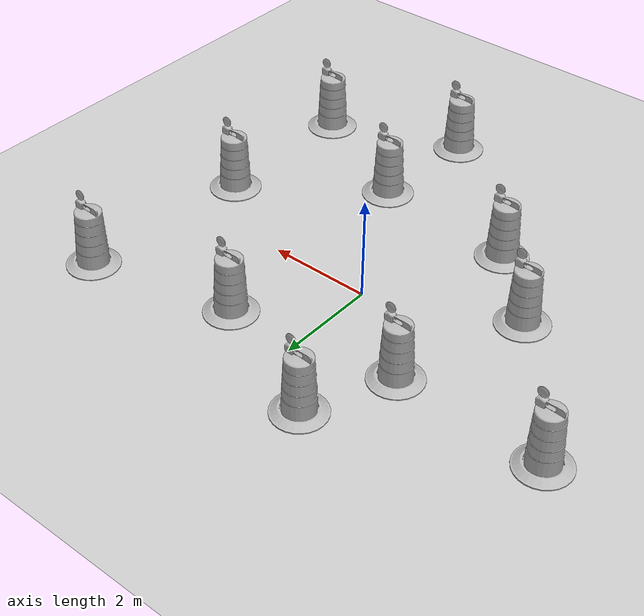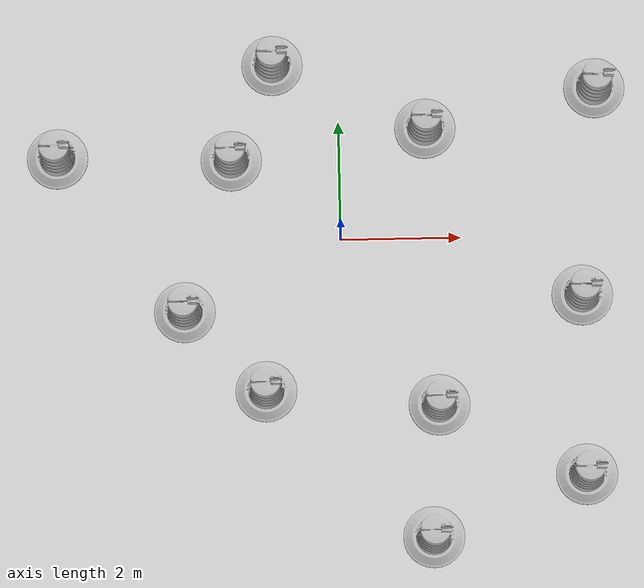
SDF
<sdf version="1.7">
 <world name="default">
  <light name="sun" type="directional">
   <pose>0 0 10 0 -0 0</pose>
   <diffuse>0.8 0.8 0.8 1</diffuse>
   <specular>0.2 0.2 0.2 1</specular>
   <attenuation>
    <range>1000</range>
    <constant>0.9</constant>
    <linear>0.01</linear>
    <quadratic>0.001</quadratic>
   </attenuation>
   <direction>-0.5 0.1 -0.9</direction>
   <spot><inner_angle>0</inner_angle><outer_angle>0</outer_angle><falloff>0</falloff></spot>
  </light>
  <model name="ground_plane">
   <static>1</static>
   <link name="link">
    <collision name="collision">
     <geometry><plane><normal>0 0 1</normal><size>100 100</size></plane></geometry>
     <surface>
      <contact><collide_bitmask>65535</collide_bitmask></contact>
      <friction><ode><mu>100</mu><mu2>50</mu2></ode></friction>
     </surface>
    </collision>
    <visual name="visual">
     <cast_shadows>0</cast_shadows>
     <geometry><plane><normal>0 0 1</normal><size>100 100</size></plane></geometry>
     <material>
      <script><uri>file://media/materials/scripts/gazebo.material</uri><name>Gazebo/Grey</name></script>
     </material>
    </visual>
   </link>
  </model>
  <gravity>0 0 -9.8</gravity>
  <magnetic_field>6e-06 2.3e-05 -4.2e-05</magnetic_field>
  <atmosphere type="adiabatic"/>
  <physics type="ode">
   <max_step_size>0.001</max_step_size>
   <real_time_factor>1</real_time_factor>
   <real_time_update_rate>1000</real_time_update_rate>
  </physics>
  <scene><ambient>0.4 0.4 0.4 1</ambient><background>0.7 0.7 0.7 1</background><shadows>1</shadows></scene>
  <audio><device>default</device></audio>
  <spherical_coordinates>
   <surface_model>EARTH_WGS84</surface_model>
   <latitude_deg>0</latitude_deg>
   <longitude_deg>0</longitude_deg>
   <elevation>0</elevation>
   <heading_deg>0</heading_deg>
  </spherical_coordinates>
  <model name="Construction Barrel">
   <link name="link">
    <inertial>
     <pose>0 0 0.4 0 -0 0</pose>
     <mass>500</mass>
     <inertia><ixx>51.2096</ixx><iyy>51.2096</iyy><izz>25</izz><ixy>0</ixy><ixz>0</ixz><iyz>0</iyz></inertia>
    </inertial>
    <collision name="collision">
     <geometry><mesh><uri>model://construction_barrel/meshes/construction_barrel.dae</uri></mesh></geometry>
    </collision>
    <visual name="visual">
     <geometry><mesh><uri>model://construction_barrel/meshes/construction_barrel.dae</uri></mesh></geometry>
    </visual>
   </link>
   <pose>-2.60721 -1.17981 0 0 0 -2.3e-05</pose>
  </model>
  <model name="Construction Barrel_clone">
   <link name="link">
    <inertial>
     <pose>0 0 0.4 0 -0 0</pose>
     <mass>500</mass>
     <inertia><ixx>51.2096</ixx><iyy>51.2096</iyy><izz>25</izz><ixy>0</ixy><ixz>0</ixz><iyz>0</iyz></inertia>
    </inertial>
    <collision name="collision">
     <geometry><mesh><uri>model://construction_barrel/meshes/construction_barrel.dae</uri></mesh></geometry>
    </collision>
    <visual name="visual">
     <geometry><mesh><uri>model://construction_barrel/meshes/construction_barrel.dae</uri></mesh></geometry>
    </visual>
   </link>
   <pose>-1.80015 1.36644 -1e-06 4e-06 -2e-06 -2.4e-05</pose>
  </model>
  <model name="Construction Barrel_clone_0">
   <link name="link">
    <inertial>
     <pose>0 0 0.4 0 -0 0</pose>
     <mass>500</mass>
     <inertia><ixx>51.2096</ixx><iyy>51.2096</iyy><izz>25</izz><ixy>0</ixy><ixz>0</ixz><iyz>0</iyz></inertia>
    </inertial>
    <collision name="collision">
     <geometry><mesh><uri>model://construction_barrel/meshes/construction_barrel.dae</uri></mesh></geometry>
    </collision>
    <visual name="visual">
     <geometry><mesh><uri>model://construction_barrel/meshes/construction_barrel.dae</uri></mesh></geometry>
    </visual>
   </link>
   <pose>1.44436 1.86368 0 0 0 -2.3e-05</pose>
  </model>
  <model name="Construction Barrel_clone_1">
   <link name="link">
    <inertial>
     <pose>0 0 0.4 0 -0 0</pose>
     <mass>500</mass>
     <inertia><ixx>51.2096</ixx><iyy>51.2096</iyy><izz>25</izz><ixy>0</ixy><ixz>0</ixz><iyz>0</iyz></inertia>
    </inertial>
    <collision name="collision">
     <geometry><mesh><uri>model://construction_barrel/meshes/construction_barrel.dae</uri></mesh></geometry>
    </collision>
    <visual name="visual">
     <geometry><mesh><uri>model://construction_barrel/meshes/construction_barrel.dae</uri></mesh></geometry>
    </visual>
   </link>
   <pose>1.58852 -2.80141 -1e-06 5e-06 -2e-06 -2.3e-05</pose>
  </model>
  <model name="Construction Barrel_clone_2">
   <link name="link">
    <inertial>
     <pose>0 0 0.4 0 -0 0</pose>
     <mass>500</mass>
     <inertia><ixx>51.2096</ixx><iyy>51.2096</iyy><izz>25</izz><ixy>0</ixy><ixz>0</ixz><iyz>0</iyz></inertia>
    </inertial>
    <collision name="collision">
     <geometry><mesh><uri>model://construction_barrel/meshes/construction_barrel.dae</uri></mesh></geometry>
    </collision>
    <visual name="visual">
     <geometry><mesh><uri>model://construction_barrel/meshes/construction_barrel.dae</uri></mesh></geometry>
    </visual>
   </link>
   <pose>-1.27291 -2.53103 -3e-06 -4e-06 -4e-06 -1.8e-05</pose>
  </model>
  <model name="Construction Barrel_clone_3">
   <link name="link">
    <inertial>
     <pose>0 0 0.4 0 -0 0</pose>
     <mass>500</mass>
     <inertia><ixx>51.2096</ixx><iyy>51.2096</iyy><izz>25</izz><ixy>0</ixy><ixz>0</ixz><iyz>0</iyz></inertia>
    </inertial>
    <collision name="collision">
     <geometry><mesh><uri>model://construction_barrel/meshes/construction_barrel.dae</uri></mesh></geometry>
    </collision>
    <visual name="visual">
     <geometry><mesh><uri>model://construction_barrel/meshes/construction_barrel.dae</uri></mesh></geometry>
    </visual>
   </link>
   <pose>3.99995 -1.00002 -2e-06 -7e-06 4e-06 -2.1e-05</pose>
  </model>
  <model name="Construction Barrel_clone_4">
   <link name="link">
    <inertial>
     <pose>0 0 0.4 0 -0 0</pose>
     <mass>500</mass>
     <inertia><ixx>51.2096</ixx><iyy>51.2096</iyy><izz>25</izz><ixy>0</ixy><ixz>0</ixz><iyz>0</iyz></inertia>
    </inertial>
    <collision name="collision">
     <geometry><mesh><uri>model://construction_barrel/meshes/construction_barrel.dae</uri></mesh></geometry>
    </collision>
    <visual name="visual">
     <geometry><mesh><uri>model://construction_barrel/meshes/construction_barrel.dae</uri></mesh></geometry>
    </visual>
   </link>
   <pose>-1.09445 2.98135 -1e-06 7e-06 8e-06 -2.1e-05</pose>
  </model>
  <model name="Construction Barrel_clone_5">
   <link name="link">
    <inertial>
     <pose>0 0 0.4 0 -0 0</pose>
     <mass>500</mass>
     <inertia><ixx>51.2096</ixx><iyy>51.2096</iyy><izz>25</izz><ixy>0</ixy><ixz>0</ixz><iyz>0</iyz></inertia>
    </inertial>
    <collision name="collision">
     <geometry><mesh><uri>model://construction_barrel/meshes/construction_barrel.dae</uri></mesh></geometry>
    </collision>
    <visual name="visual">
     <geometry><mesh><uri>model://construction_barrel/meshes/construction_barrel.dae</uri></mesh></geometry>
    </visual>
   </link>
   <pose>-4.69933 1.44999 -0 0 0 -1.8e-05</pose>
  </model>
  <model name="Construction Barrel_clone_6">
   <link name="link">
    <inertial>
     <pose>0 0 0.4 0 -0 0</pose>
     <mass>500</mass>
     <inertia><ixx>51.2096</ixx><iyy>51.2096</iyy><izz>25</izz><ixy>0</ixy><ixz>0</ixz><iyz>0</iyz></inertia>
    </inertial>
    <collision name="collision">
     <geometry><mesh><uri>model://construction_barrel/meshes/construction_barrel.dae</uri></mesh></geometry>
    </collision>
    <visual name="visual">
     <geometry><mesh><uri>model://construction_barrel/meshes/construction_barrel.dae</uri></mesh></geometry>
    </visual>
   </link>
   <pose>1.45483 -5.00001 -5e-06 -7e-06 -1e-05 -2.1e-05</pose>
  </model>
  <model name="Construction Barrel_clone_7">
   <link name="link">
    <inertial>
     <pose>0 0 0.4 0 -0 0</pose>
     <mass>500</mass>
     <inertia><ixx>51.2096</ixx><iyy>51.2096</iyy><izz>25</izz><ixy>0</ixy><ixz>0</ixz><iyz>0</iyz></inertia>
    </inertial>
    <collision name="collision">
     <geometry><mesh><uri>model://construction_barrel/meshes/construction_barrel.dae</uri></mesh></geometry>
    </collision>
    <visual name="visual">
     <geometry><mesh><uri>model://construction_barrel/meshes/construction_barrel.dae</uri></mesh></geometry>
    </visual>
   </link>
   <pose>3.99998 -4 -0 0 -0 -2.1e-05</pose>
  </model>
  <model name="Construction Barrel_clone_8">
   <link name="link">
    <inertial>
     <pose>0 0 0.4 0 -0 0</pose>
     <mass>500</mass>
     <inertia><ixx>51.2096</ixx><iyy>51.2096</iyy><izz>25</izz><ixy>0</ixy><ixz>0</ixz><iyz>0</iyz></inertia>
    </inertial>
    <collision name="collision">
     <geometry><mesh><uri>model://construction_barrel/meshes/construction_barrel.dae</uri></mesh></geometry>
    </collision>
    <visual name="visual">
     <geometry><mesh><uri>model://construction_barrel/meshes/construction_barrel.dae</uri></mesh></geometry>
    </visual>
   </link>
   <pose>4.2876 2.50525 1e-06 5e-06 1e-06 -2.3e-05</pose>
  </model>
 </world>
</sdf>
